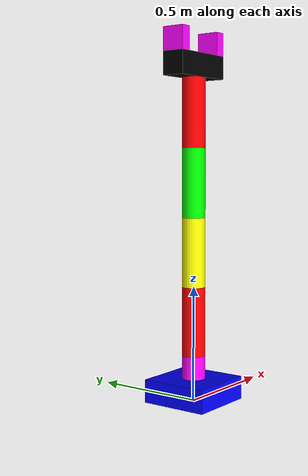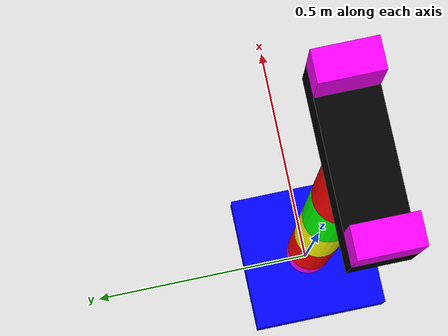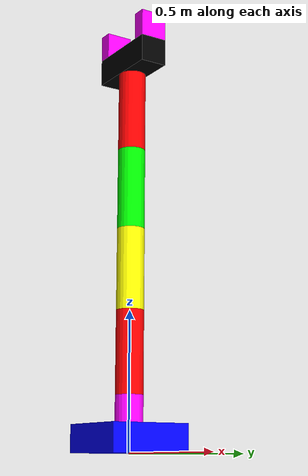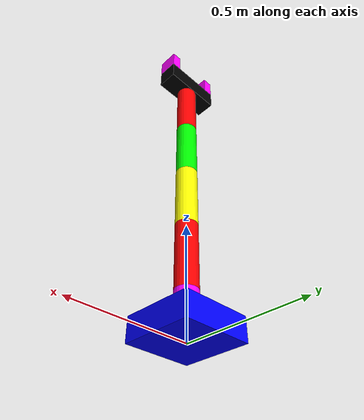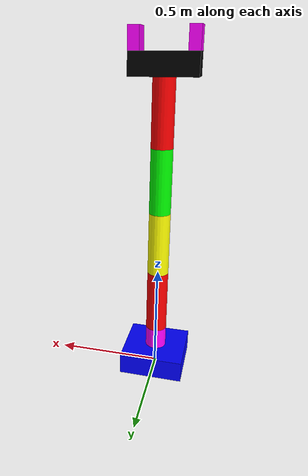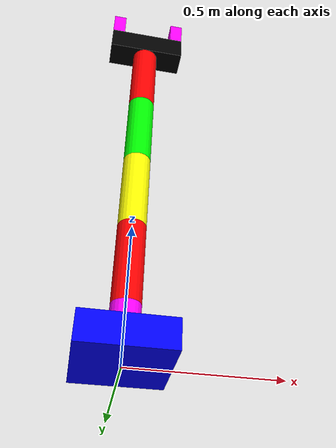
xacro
<?xml version="1.0"?>
<robot xmlns:xacro="http://www.ros.org/wiki/xacro" name="robot_name">
    <xacro:arg name="initial_positions_file" default="initial_positions.yaml" />

    <!-- Import robot_name urdf file -->
    <xacro:include filename="$(find arm1)/urdf/arm.urdf" />

    <!-- Import control_xacro -->
    <xacro:include filename="robot_name.ros2_control.xacro" />

    <xacro:robot_name_ros2_control name="FakeSystem" initial_positions_file="$(arg initial_positions_file)"/>

</robot>

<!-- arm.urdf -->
<robot name="robot_name">
<!-- define link -->
    <link name="base_link">
        <visual>
            <geometry>
                <box size="0.3 0.3 0.1"/>
            </geometry>
            <origin xyz="0.0 0.0 0.05" rpy="0.0 0.0 0.0"/>
            <material name="blue">
                <color rgba="0.0 0.0 1.0 1.0"/>
            </material>
        </visual>
        <collision>
            <geometry>
                <box size="0.3 0.3 0.1"/>
            </geometry>
            <origin xyz="0.0 0.0 0.05" rpy="0.0 0.0 0.0"/>
        </collision>
    </link>
     <link name="link1">
        <inertial>
            <origin xyz="0.0 0.0 0.05" rpy="0.0 0.0 0.0"/>
            <mass value="1.0"/>
            <inertia ixx="0.01" ixy="0.0" ixz="0.0" iyy="0.01" iyz="0.0" izz="0.001"/>
        </inertial>
        <visual>
            <geometry>
                <cylinder radius="0.05" length="0.1"/>
            </geometry>
            <origin xyz="0.0 0.0 0.05" rpy="0.0 0.0 0.0"/>
            <material name="pink">
                <color rgba="1.0 0.0 1.0 1.0"/>
            </material>
        </visual>
        <collision>
            <geometry>
                <cylinder radius="0.05" length="0.1"/>
            </geometry>
            <origin xyz="0.0 0.0 0.05" rpy="0.0 0.0 0.0"/>
        </collision>
    </link>
    <link name="link2">
        <inertial>
            <origin xyz="0.0 0.0 0.15" rpy="0.0 0.0 0.0"/>
            <mass value="1.0"/>
            <inertia ixx="0.01" ixy="0.0" ixz="0.0" iyy="0.01" iyz="0.0" izz="0.001"/>
        </inertial>
        <visual>
            <geometry>
                <cylinder radius="0.05" length="0.3"/>
            </geometry>
            <origin xyz="0.0 0.0 0.15" rpy="0.0 0.0 0.0"/>
            <material name="red">
                <color rgba="1.0 0.0 0.0 1.0"/>
            </material>
        </visual>
        <collision>
            <geometry>
                <cylinder radius="0.05" length="0.3"/>
            </geometry>
            <origin xyz="0.0 0.0 0.15" rpy="0.0 0.0 0.0"/>
        </collision>
    </link>
    <link name="link3">
        <inertial>
            <origin xyz="0.0 0.0 0.15" rpy="0.0 0.0 0.0"/>
            <mass value="1.0"/>
            <inertia ixx="0.01" ixy="0.0" ixz="0.0" iyy="0.01" iyz="0.0" izz="0.001"/>
        </inertial>
        <visual>
            <geometry>
                <cylinder radius="0.05" length="0.3"/>
            </geometry>
            <origin xyz="0.0 0.0 0.15" rpy="0.0 0.0 0.0"/>
            <material name="yellow">
                <color rgba="1.0 1.0 0.0 1.0"/>
            </material>
        </visual>
        <collision>
            <geometry>
                <cylinder radius="0.05" length="0.3"/>
            </geometry>
            <origin xyz="0.0 0.0 0.15" rpy="0.0 0.0 0.0"/>
        </collision>
    </link>
    <link name="link4">
        <inertial>
            <origin xyz="0.0 0.0 0.15" rpy="0.0 0.0 0.0"/>
            <mass value="1.0"/>
            <inertia ixx="0.01" ixy="0.0" ixz="0.0" iyy="0.01" iyz="0.0" izz="0.001"/>
        </inertial>
        <visual>
            <geometry>
                <cylinder radius="0.05" length="0.3"/>
            </geometry>
            <origin xyz="0.0 0.0 0.15" rpy="0.0 0.0 0.0"/>
            <material name="green">
                <color rgba="0.0 1.0 0.0 1.0"/>
            </material>
        </visual>
        <collision>
            <geometry>
                <cylinder radius="0.05" length="0.3"/>
            </geometry>
            <origin xyz="0.0 0.0 0.15" rpy="0.0 0.0 0.0"/>
        </collision>
     </link>
    <link name="link5">
        <inertial>
            <origin xyz="0.0 0.0 0.15" rpy="0.0 0.0 0.0"/>
            <mass value="1.0"/>
            <inertia ixx="0.01" ixy="0.0" ixz="0.0" iyy="0.01" iyz="0.0" izz="0.001"/>
        </inertial>
        <visual>
            <geometry>
                <cylinder radius="0.05" length="0.3"/>
            </geometry>
            <origin xyz="0.0 0.0 0.15" rpy="0.0 0.0 0.0"/>
            <material name="red">
                <color rgba="1.0 0.0 0.0 1.0"/>
            </material>
        </visual>
        <collision>
            <geometry>
                <cylinder radius="0.05" length="0.3"/>
            </geometry>
            <origin xyz="0.0 0.0 0.15" rpy="0.0 0.0 0.0"/>
        </collision>
     </link>
    <link name="gripper_base_link">
        <inertial>
            <origin xyz="0.0 0.0 0.05" rpy="0.0 0.0 0.0"/>
            <mass value="1.0"/>
            <inertia ixx="0.01" ixy="0.0" ixz="0.0" iyy="0.01" iyz="0.0" izz="0.001"/>
        </inertial>
        <visual>
            <geometry>
                <box size="0.3 0.1 0.1"/>
            </geometry>
            <origin xyz="0.0 0.0 0.05" rpy="0.0 0.0 0.0"/>
            <material name="black">
                <color rgba="0.0 0.0 0.0 1.0"/>
            </material>
        </visual>
        <collision>
            <geometry>
                <box size="0.3 0.1 0.1"/>
            </geometry>
            <origin xyz="0.0 0.0 0.05" rpy="0.0 0.0 0.0"/>
        </collision>
     </link>
    <link name="hand_left_link">
        <inertial>
            <origin xyz="0.0 0.0 0.05" rpy="0.0 0.0 0.0"/>
            <mass value="1.0"/>
            <inertia ixx="0.01" ixy="0.0" ixz="0.0" iyy="0.01" iyz="0.0" izz="0.001"/>
        </inertial>
        <visual>
            <geometry>
                <box size="0.05 0.1 0.1"/>
            </geometry>
            <origin xyz="0.0 0.0 0.05" rpy="0.0 0.0 0.0"/>
            <material name="pink">
                <color rgba="1.0 0.0 1.0 1.0"/>
            </material>
        </visual>
        <collision>
            <geometry>
                <box size="0.05 0.1 0.1"/>
            </geometry>
            <origin xyz="0.0 0.0 0.05" rpy="0.0 0.0 0.0"/>
        </collision>
     </link>
    <link name="hand_right_link">
        <inertial>
            <origin xyz="0.0 0.0 0.05" rpy="0.0 0.0 0.0"/>
            <mass value="1.0"/>
            <inertia ixx="0.01" ixy="0.0" ixz="0.0" iyy="0.01" iyz="0.0" izz="0.001"/>
        </inertial>
        <visual>
            <geometry>
                <box size="0.05 0.1 0.1"/>
            </geometry>
            <origin xyz="0.0 0.0 0.05" rpy="0.0 0.0 0.0"/>
            <material name="pink">
                <color rgba="1.0 0.0 1.0 1.0"/>
            </material>
        </visual>
        <collision>
            <geometry>
                <box size="0.05 0.1 0.1"/>
            </geometry>
            <origin xyz="0.0 0.0 0.05" rpy="0.0 0.0 0.0"/>
        </collision>
     </link>
<!-- define joint -->
    <joint name="joint1" type="revolute">
        <parent link="base_link"/>
        <child link="link1"/>
        <origin xyz="0.0 0.0 0.1" rpy="0.0 0.0 0.0"/>
        <axis xyz="0.0 0.0 1.0"/>
        <limit lower="-3.14" upper="3.14" effort="100.0" velocity="1.0"/>
    </joint>
    <joint name="joint2" type="revolute">
        <parent link="link1"/>
        <child link="link2"/>
        <origin xyz="0.0 0.0 0.1" rpy="0.0 0.0 0.0"/>
        <axis xyz="1.0 0.0 0.0"/>
        <limit lower="-3.14" upper="3.14" effort="100.0" velocity="1.0"/>
    </joint>
    <joint name="joint3" type="revolute">
        <parent link="link2"/>
        <child link="link3"/>
        <origin xyz="0.0 0.0 0.3" rpy="0.0 0.0 0.0"/>
        <axis xyz="1.0 0.0 0.0"/>
        <limit lower="-3.14" upper="3.14" effort="100.0" velocity="1.0"/>
    </joint>
    <joint name="joint4" type="revolute">
        <parent link="link3"/>
        <child link="link4"/>
        <origin xyz="0.0 0.0 0.3" rpy="0.0 0.0 0.0"/>
        <axis xyz="1.0 0.0 0.0"/>
        <limit lower="-3.14" upper="3.14" effort="100.0" velocity="1.0"/>
    </joint>
    <joint name="joint5" type="revolute">
        <parent link="link4"/>
        <child link="link5"/>
        <origin xyz="0.0 0.0 0.3" rpy="0.0 0.0 0.0"/>
        <axis xyz="1.0 0.0 0.0"/>
        <limit lower="-3.14" upper="3.14" effort="100.0" velocity="1.0"/>
    </joint>
    <joint name="joint6" type="revolute">
        <parent link="link5"/>
        <child link="gripper_base_link"/>
        <origin xyz="0.0 0.0 0.3" rpy="0.0 0.0 0.0"/>
        <axis xyz="0.0 0.0 1.0"/>
        <limit lower="-3.14" upper="3.14" effort="100.0" velocity="1.0"/>
    </joint>
    <joint name="joint_gripper_and_left" type="prismatic">
        <parent link="gripper_base_link"/>
        <child link="hand_left_link"/>
        <origin xyz="0.125 0.0 0.1" rpy="0.0 0.0 0.0"/>
        <axis xyz="-1.0 0.0 0.0"/>
        <limit lower="0.0" upper="0.1" effort="3000.0" velocity="0.1"/>
    </joint>
    <joint name="joint_gripper_and_right" type="prismatic">
        <parent link="gripper_base_link"/>
        <child link="hand_right_link"/>
        <origin xyz="-0.125 0.0 0.1" rpy="0.0 0.0 0.0"/>
        <axis xyz="1.0 0.0 0.0"/>
        <limit lower="0.0" upper="0.1" effort="100.0" velocity="0.1"/>
        <mimic joint="joint_gripper_and_left"></mimic>
    </joint>
</robot>
